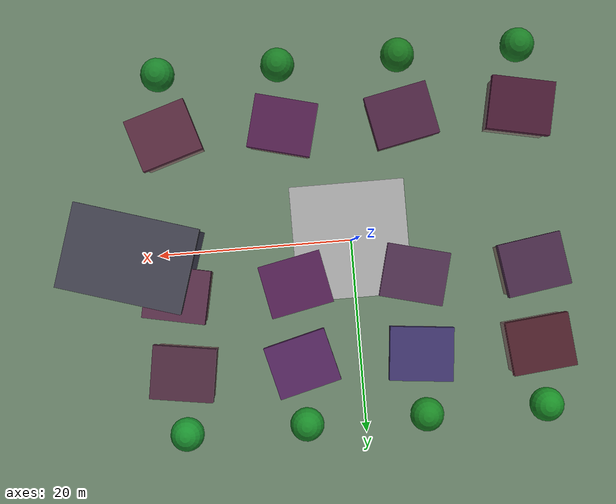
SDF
<sdf version="1.9">
 <world name="search_rescue_enhanced">
  <physics type="ode">
   <max_step_size>0.004</max_step_size>
   <real_time_factor>1.0</real_time_factor>
   <real_time_update_rate>250</real_time_update_rate>
  </physics>
  <gravity>0 0 -9.8</gravity>
  <magnetic_field>6e-06 2.3e-05 -4.2e-05</magnetic_field>
  <atmosphere type="adiabatic"/>
  <spherical_coordinates>
   <surface_model>EARTH_WGS84</surface_model>
   <world_frame_orientation>ENU</world_frame_orientation>
   <latitude_deg>47.397971057728974</latitude_deg>
   <longitude_deg>8.546163739800146</longitude_deg>
   <elevation>488</elevation>
   <heading_deg>0</heading_deg>
  </spherical_coordinates>
  <scene>
   <ambient>0.8 0.5 1</ambient>
   <grid>false</grid>
   <sky><clouds>true</clouds></sky>
   <shadows>1</shadows>
  </scene>
  <light name="sunUTC" type="directional">
   <pose>0 0 500 0 -0 0</pose>
   <cast_shadows>false</cast_shadows>
   <intensity>1</intensity>
   <direction>0.001 0.625 -0.78</direction>
   <diffuse>0.904 0.904 0.904 1</diffuse>
   <specular>0.271 0.271 0.271 1</specular>
   <attenuation><range>2000</range><linear>0</linear><constant>1</constant><quadratic>0</quadratic></attenuation>
  </light>
  <model name="ground_plane">
   <static>true</static>
   <pose>0 0 -0.5 0 0 0</pose>
   <link name="link">
    <collision name="collision">
     <geometry><plane><normal>0 0 1</normal><size>200 200</size></plane></geometry>
    </collision>
    <visual name="visual">
     <geometry><plane><normal>0 0 1</normal><size>200 200</size></plane></geometry>
     <material><ambient>0.4 0.5 0.4 1</ambient><diffuse>0.4 0.5 0.4 1</diffuse></material>
    </visual>
   </link>
  </model>
  <model name="operations_center">
   <static>true</static>
   <pose>22 0 3 0 0 -0.3</pose>
   <link name="link">
    <visual name="base">
     <geometry><box><size>12 8 6</size></box></geometry>
     <material><ambient>0.4 0.4 0.45 1</ambient><diffuse>0.4 0.4 0.5 1</diffuse></material>
    </visual>
    <collision name="base_collision"><geometry><box><size>12 8 6</size></box></geometry></collision>
    <visual name="roof">
     <pose>0 0 3.2 0 0 0</pose>
     <geometry><box><size>12.5 8.5 1</size></box></geometry>
     <material><ambient>0.25 0.25 0.3 1</ambient><diffuse>0.25 0.25 0.3 1</diffuse></material>
    </visual>
   </link>
  </model>
  <model name="central_plaza">
   <static>true</static>
   <pose>0 0 0.01 0 0 0</pose>
   <link name="link">
    <visual name="surface">
     <geometry><box><size>12 12 0.02</size></box></geometry>
     <material><ambient>0.65 0.65 0.65 1</ambient><diffuse>0.65 0.65 0.65 1</diffuse></material>
    </visual>
    <collision name="surface_collision"><geometry><box><size>12 12 0.02</size></box></geometry></collision>
   </link>
  </model>
  <model name="house_nw">
   <static>true</static>
   <pose>-18 12 1.5 0 0 0.1</pose>
   <link name="link">
    <visual name="walls">
     <geometry><box><size>6 5 3</size></box></geometry>
     <material><ambient>0.58 0.52 0.48 1</ambient><diffuse>0.58 0.52 0.48 1</diffuse></material>
    </visual>
    <collision name="walls_collision"><geometry><box><size>6 5 3</size></box></geometry></collision>
    <visual name="roof">
     <pose>0 0 1.7 0 0 0</pose>
     <geometry><box><size>6.4 5.4 1</size></box></geometry>
     <material><ambient>0.3 0.12 0.16 1</ambient><diffuse>0.3 0.12 0.16 1</diffuse></material>
    </visual>
   </link>
  </model>
  <model name="house_n1">
   <static>true</static>
   <pose>-6 12 1.5 0 0 -0.1</pose>
   <link name="link">
    <visual name="walls">
     <geometry><box><size>6 5 3</size></box></geometry>
     <material><ambient>0.6 0.54 0.5 1</ambient><diffuse>0.6 0.54 0.5 1</diffuse></material>
    </visual>
    <collision name="walls_collision"><geometry><box><size>6 5 3</size></box></geometry></collision>
    <visual name="roof">
     <pose>0 0 1.7 0 0 0</pose>
     <geometry><box><size>6.4 5.4 1</size></box></geometry>
     <material><ambient>0.24 0.2 0.42 1</ambient><diffuse>0.24 0.2 0.42 1</diffuse></material>
    </visual>
   </link>
  </model>
  <model name="house_n2">
   <static>true</static>
   <pose>6 12 1.5 0 0 0.25</pose>
   <link name="link">
    <visual name="walls">
     <geometry><box><size>6 5 3</size></box></geometry>
     <material><ambient>0.56 0.5 0.46 1</ambient><diffuse>0.56 0.5 0.46 1</diffuse></material>
    </visual>
    <collision name="walls_collision"><geometry><box><size>6 5 3</size></box></geometry></collision>
    <visual name="roof">
     <pose>0 0 1.7 0 0 0</pose>
     <geometry><box><size>6.4 5.4 1</size></box></geometry>
     <material><ambient>0.32 0.14 0.36 1</ambient><diffuse>0.32 0.14 0.36 1</diffuse></material>
    </visual>
   </link>
  </model>
  <model name="house_ne">
   <static>true</static>
   <pose>18 12 1.5 0 0 -0.15</pose>
   <link name="link">
    <visual name="walls">
     <geometry><box><size>6 5 3</size></box></geometry>
     <material><ambient>0.6 0.5 0.46 1</ambient><diffuse>0.6 0.5 0.46 1</diffuse></material>
    </visual>
    <collision name="walls_collision"><geometry><box><size>6 5 3</size></box></geometry></collision>
    <visual name="roof">
     <pose>0 0 1.7 0 0 0</pose>
     <geometry><box><size>6.4 5.4 1</size></box></geometry>
     <material><ambient>0.3 0.16 0.24 1</ambient><diffuse>0.3 0.16 0.24 1</diffuse></material>
    </visual>
   </link>
  </model>
  <model name="house_mw">
   <static>true</static>
   <pose>-18 4 1.5 0 0 0.15</pose>
   <link name="link">
    <visual name="walls">
     <geometry><box><size>6 5 3</size></box></geometry>
     <material><ambient>0.55 0.5 0.44 1</ambient><diffuse>0.55 0.5 0.44 1</diffuse></material>
    </visual>
    <collision name="walls_collision"><geometry><box><size>6 5 3</size></box></geometry></collision>
    <visual name="roof">
     <pose>0 0 1.7 0 0 0</pose>
     <geometry><box><size>6.4 5.4 1</size></box></geometry>
     <material><ambient>0.28 0.16 0.28 1</ambient><diffuse>0.28 0.16 0.28 1</diffuse></material>
    </visual>
   </link>
  </model>
  <model name="house_m1">
   <static>true</static>
   <pose>-6 4 1.5 0 0 -0.25</pose>
   <link name="link">
    <visual name="walls">
     <geometry><box><size>6 5 3</size></box></geometry>
     <material><ambient>0.58 0.5 0.46 1</ambient><diffuse>0.58 0.5 0.46 1</diffuse></material>
    </visual>
    <collision name="walls_collision"><geometry><box><size>6 5 3</size></box></geometry></collision>
    <visual name="roof">
     <pose>0 0 1.7 0 0 0</pose>
     <geometry><box><size>6.4 5.4 1</size></box></geometry>
     <material><ambient>0.3 0.18 0.3 1</ambient><diffuse>0.3 0.18 0.3 1</diffuse></material>
    </visual>
   </link>
  </model>
  <model name="house_m2">
   <static>true</static>
   <pose>6 4 1.5 0 0 0.2</pose>
   <link name="link">
    <visual name="walls">
     <geometry><box><size>6 5 3</size></box></geometry>
     <material><ambient>0.56 0.48 0.44 1</ambient><diffuse>0.56 0.48 0.44 1</diffuse></material>
    </visual>
    <collision name="walls_collision"><geometry><box><size>6 5 3</size></box></geometry></collision>
    <visual name="roof">
     <pose>0 0 1.7 0 0 0</pose>
     <geometry><box><size>6.4 5.4 1</size></box></geometry>
     <material><ambient>0.32 0.12 0.32 1</ambient><diffuse>0.32 0.12 0.32 1</diffuse></material>
    </visual>
   </link>
  </model>
  <model name="house_me">
   <static>true</static>
   <pose>18 4 1.5 0 0 -0.2</pose>
   <link name="link">
    <visual name="walls">
     <geometry><box><size>6 5 3</size></box></geometry>
     <material><ambient>0.6 0.52 0.46 1</ambient><diffuse>0.6 0.52 0.46 1</diffuse></material>
    </visual>
    <collision name="walls_collision"><geometry><box><size>6 5 3</size></box></geometry></collision>
    <visual name="roof">
     <pose>0 0 1.7 0 0 0</pose>
     <geometry><box><size>6.4 5.4 1</size></box></geometry>
     <material><ambient>0.34 0.18 0.28 1</ambient><diffuse>0.34 0.18 0.28 1</diffuse></material>
    </visual>
   </link>
  </model>
  <model name="house_sw">
   <static>true</static>
   <pose>-18 -12 1.5 0 0 -0.2</pose>
   <link name="link">
    <visual name="walls">
     <geometry><box><size>6 5 3</size></box></geometry>
     <material><ambient>0.54 0.5 0.46 1</ambient><diffuse>0.54 0.5 0.46 1</diffuse></material>
    </visual>
    <collision name="walls_collision"><geometry><box><size>6 5 3</size></box></geometry></collision>
    <visual name="roof">
     <pose>0 0 1.7 0 0 0</pose>
     <geometry><box><size>6.4 5.4 1</size></box></geometry>
     <material><ambient>0.28 0.1 0.2 1</ambient><diffuse>0.28 0.1 0.2 1</diffuse></material>
    </visual>
   </link>
  </model>
  <model name="house_s1">
   <static>true</static>
   <pose>-6 -12 1.5 0 0 0.2</pose>
   <link name="link">
    <visual name="walls">
     <geometry><box><size>6 5 3</size></box></geometry>
     <material><ambient>0.6 0.52 0.44 1</ambient><diffuse>0.6 0.52 0.44 1</diffuse></material>
    </visual>
    <collision name="walls_collision"><geometry><box><size>6 5 3</size></box></geometry></collision>
    <visual name="roof">
     <pose>0 0 1.7 0 0 0</pose>
     <geometry><box><size>6.4 5.4 1</size></box></geometry>
     <material><ambient>0.3 0.14 0.26 1</ambient><diffuse>0.3 0.14 0.26 1</diffuse></material>
    </visual>
   </link>
  </model>
  <model name="house_s2">
   <static>true</static>
   <pose>6 -12 1.5 0 0 -0.25</pose>
   <link name="link">
    <visual name="walls">
     <geometry><box><size>6 5 3</size></box></geometry>
     <material><ambient>0.58 0.48 0.44 1</ambient><diffuse>0.58 0.48 0.44 1</diffuse></material>
    </visual>
    <collision name="walls_collision"><geometry><box><size>6 5 3</size></box></geometry></collision>
    <visual name="roof">
     <pose>0 0 1.7 0 0 0</pose>
     <geometry><box><size>6.4 5.4 1</size></box></geometry>
     <material><ambient>0.32 0.12 0.3 1</ambient><diffuse>0.32 0.12 0.3 1</diffuse></material>
    </visual>
   </link>
  </model>
  <model name="house_se">
   <static>true</static>
   <pose>18 -12 1.5 0 0 0.3</pose>
   <link name="link">
    <visual name="walls">
     <geometry><box><size>6 5 3</size></box></geometry>
     <material><ambient>0.6 0.5 0.48 1</ambient><diffuse>0.6 0.5 0.48 1</diffuse></material>
    </visual>
    <collision name="walls_collision"><geometry><box><size>6 5 3</size></box></geometry></collision>
    <visual name="roof">
     <pose>0 0 1.7 0 0 0</pose>
     <geometry><box><size>6.4 5.4 1</size></box></geometry>
     <material><ambient>0.34 0.16 0.24 1</ambient><diffuse>0.34 0.16 0.24 1</diffuse></material>
    </visual>
   </link>
  </model>
  <model name="tree_nw">
   <static>true</static>
   <pose>-18 18 2 0 0 0</pose>
   <link name="link">
    <visual name="trunk">
     <geometry><cylinder><radius>0.2</radius><length>3</length></cylinder></geometry>
     <material><ambient>0.35 0.2 0.1 1</ambient><diffuse>0.35 0.2 0.1 1</diffuse></material>
    </visual>
    <collision name="trunk_collision">
     <geometry><cylinder><radius>0.2</radius><length>3</length></cylinder></geometry>
    </collision>
    <visual name="canopy">
     <pose>0 0 1.8 0 0 0</pose>
     <geometry><sphere><radius>1.7</radius></sphere></geometry>
     <material><ambient>0.1 0.45 0.15 1</ambient><diffuse>0.1 0.55 0.15 1</diffuse></material>
    </visual>
   </link>
  </model>
  <model name="tree_nn">
   <static>true</static>
   <pose>-6 18 2 0 0 0</pose>
   <link name="link">
    <visual name="trunk">
     <geometry><cylinder><radius>0.2</radius><length>3</length></cylinder></geometry>
     <material><ambient>0.35 0.2 0.1 1</ambient><diffuse>0.35 0.2 0.1 1</diffuse></material>
    </visual>
    <collision name="trunk_collision">
     <geometry><cylinder><radius>0.2</radius><length>3</length></cylinder></geometry>
    </collision>
    <visual name="canopy">
     <pose>0 0 1.8 0 0 0</pose>
     <geometry><sphere><radius>1.7</radius></sphere></geometry>
     <material><ambient>0.1 0.42 0.14 1</ambient><diffuse>0.1 0.52 0.14 1</diffuse></material>
    </visual>
   </link>
  </model>
  <model name="tree_ne">
   <static>true</static>
   <pose>6 18 2 0 0 0</pose>
   <link name="link">
    <visual name="trunk">
     <geometry><cylinder><radius>0.2</radius><length>3</length></cylinder></geometry>
     <material><ambient>0.35 0.2 0.1 1</ambient><diffuse>0.35 0.2 0.1 1</diffuse></material>
    </visual>
    <collision name="trunk_collision">
     <geometry><cylinder><radius>0.2</radius><length>3</length></cylinder></geometry>
    </collision>
    <visual name="canopy">
     <pose>0 0 1.8 0 0 0</pose>
     <geometry><sphere><radius>1.7</radius></sphere></geometry>
     <material><ambient>0.1 0.44 0.16 1</ambient><diffuse>0.1 0.54 0.16 1</diffuse></material>
    </visual>
   </link>
  </model>
  <model name="tree_ne2">
   <static>true</static>
   <pose>18 18 2 0 0 0</pose>
   <link name="link">
    <visual name="trunk">
     <geometry><cylinder><radius>0.2</radius><length>3</length></cylinder></geometry>
     <material><ambient>0.35 0.2 0.1 1</ambient><diffuse>0.35 0.2 0.1 1</diffuse></material>
    </visual>
    <collision name="trunk_collision">
     <geometry><cylinder><radius>0.2</radius><length>3</length></cylinder></geometry>
    </collision>
    <visual name="canopy">
     <pose>0 0 1.8 0 0 0</pose>
     <geometry><sphere><radius>1.7</radius></sphere></geometry>
     <material><ambient>0.1 0.46 0.18 1</ambient><diffuse>0.1 0.56 0.18 1</diffuse></material>
    </visual>
   </link>
  </model>
  <model name="tree_sw">
   <static>true</static>
   <pose>-18 -18 2 0 0 0</pose>
   <link name="link">
    <visual name="trunk">
     <geometry><cylinder><radius>0.2</radius><length>3</length></cylinder></geometry>
     <material><ambient>0.35 0.2 0.1 1</ambient><diffuse>0.35 0.2 0.1 1</diffuse></material>
    </visual>
    <collision name="trunk_collision">
     <geometry><cylinder><radius>0.2</radius><length>3</length></cylinder></geometry>
    </collision>
    <visual name="canopy">
     <pose>0 0 1.8 0 0 0</pose>
     <geometry><sphere><radius>1.7</radius></sphere></geometry>
     <material><ambient>0.1 0.38 0.14 1</ambient><diffuse>0.1 0.48 0.14 1</diffuse></material>
    </visual>
   </link>
  </model>
  <model name="tree_sn">
   <static>true</static>
   <pose>-6 -18 2 0 0 0</pose>
   <link name="link">
    <visual name="trunk">
     <geometry><cylinder><radius>0.2</radius><length>3</length></cylinder></geometry>
     <material><ambient>0.35 0.2 0.1 1</ambient><diffuse>0.35 0.2 0.1 1</diffuse></material>
    </visual>
    <collision name="trunk_collision">
     <geometry><cylinder><radius>0.2</radius><length>3</length></cylinder></geometry>
    </collision>
    <visual name="canopy">
     <pose>0 0 1.8 0 0 0</pose>
     <geometry><sphere><radius>1.7</radius></sphere></geometry>
     <material><ambient>0.1 0.36 0.12 1</ambient><diffuse>0.1 0.46 0.12 1</diffuse></material>
    </visual>
   </link>
  </model>
  <model name="tree_se">
   <static>true</static>
   <pose>6 -18 2 0 0 0</pose>
   <link name="link">
    <visual name="trunk">
     <geometry><cylinder><radius>0.2</radius><length>3</length></cylinder></geometry>
     <material><ambient>0.35 0.2 0.1 1</ambient><diffuse>0.35 0.2 0.1 1</diffuse></material>
    </visual>
    <collision name="trunk_collision">
     <geometry><cylinder><radius>0.2</radius><length>3</length></cylinder></geometry>
    </collision>
    <visual name="canopy">
     <pose>0 0 1.8 0 0 0</pose>
     <geometry><sphere><radius>1.7</radius></sphere></geometry>
     <material><ambient>0.1 0.38 0.14 1</ambient><diffuse>0.1 0.48 0.14 1</diffuse></material>
    </visual>
   </link>
  </model>
  <model name="tree_se2">
   <static>true</static>
   <pose>18 -18 2 0 0 0</pose>
   <link name="link">
    <visual name="trunk">
     <geometry><cylinder><radius>0.2</radius><length>3</length></cylinder></geometry>
     <material><ambient>0.35 0.2 0.1 1</ambient><diffuse>0.35 0.2 0.1 1</diffuse></material>
    </visual>
    <collision name="trunk_collision">
     <geometry><cylinder><radius>0.2</radius><length>3</length></cylinder></geometry>
    </collision>
    <visual name="canopy">
     <pose>0 0 1.8 0 0 0</pose>
     <geometry><sphere><radius>1.7</radius></sphere></geometry>
     <material><ambient>0.1 0.4 0.16 1</ambient><diffuse>0.1 0.5 0.16 1</diffuse></material>
    </visual>
   </link>
  </model>
 </world>
</sdf>
